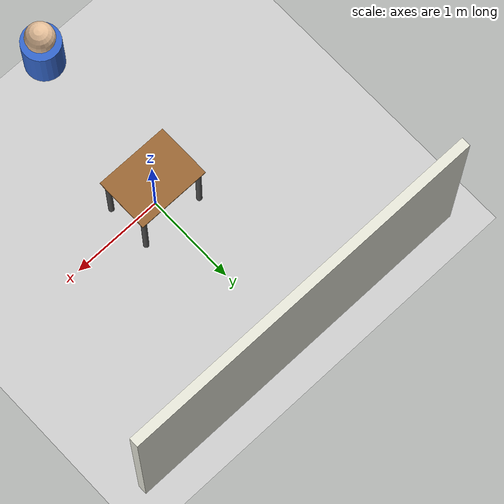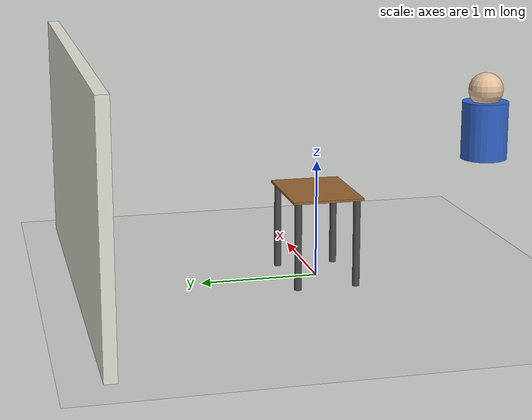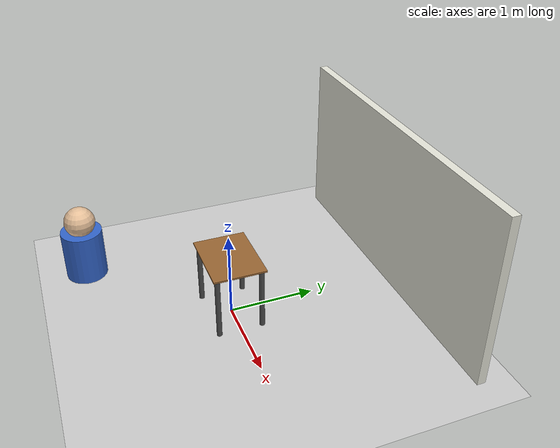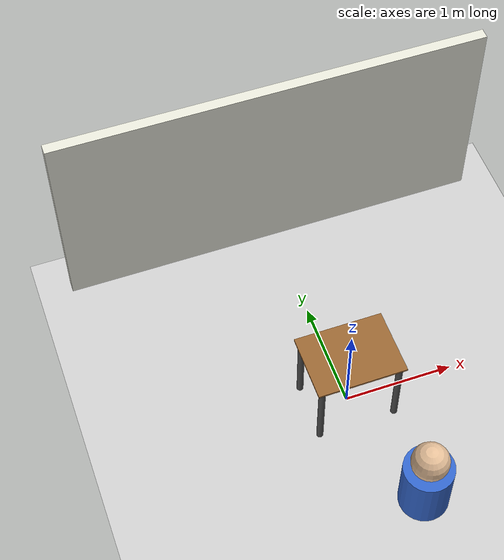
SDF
<?xml version="1.0"?>
<sdf version="1.6">
  <world name="companion_room">

    <!-- Physics -->
    <physics type="ode">
      <max_step_size>0.001</max_step_size>
      <real_time_factor>1.0</real_time_factor>
      <real_time_update_rate>1000</real_time_update_rate>
    </physics>

    <!-- Scene -->
    <scene>
      <ambient>0.6 0.6 0.6 1.0</ambient>
      <background>0.7 0.8 0.9 1.0</background>
      <shadows>true</shadows>
    </scene>

    <!-- Sun light -->
    <light type="directional" name="sun">
      <cast_shadows>true</cast_shadows>
      <pose>0 0 10 0 0 0</pose>
      <diffuse>0.8 0.8 0.8 1</diffuse>
      <specular>0.2 0.2 0.2 1</specular>
      <direction>-0.5 0.1 -0.9</direction>
    </light>

    <!-- Room light -->
    <light type="point" name="room_light">
      <pose>0 0 2.5 0 0 0</pose>
      <diffuse>0.8 0.8 0.8 1</diffuse>
      <specular>0.1 0.1 0.1 1</specular>
      <attenuation>
        <range>10</range>
        <constant>0.5</constant>
        <linear>0.01</linear>
        <quadratic>0.001</quadratic>
      </attenuation>
    </light>

    <!-- Ground plane -->
    <model name="ground_plane">
      <static>true</static>
      <link name="link">
        <collision name="collision">
          <geometry>
            <plane>
              <normal>0 0 1</normal>
              <size>10 10</size>
            </plane>
          </geometry>
        </collision>
        <visual name="visual">
          <geometry>
            <plane>
              <normal>0 0 1</normal>
              <size>10 10</size>
            </plane>
          </geometry>
          <material>
            <ambient>0.8 0.8 0.8 1</ambient>
            <diffuse>0.8 0.8 0.8 1</diffuse>
          </material>
        </visual>
      </link>
    </model>

    <!-- Table for robot -->
    <model name="table">
      <static>true</static>
      <pose>0 0 0 0 0 0</pose>
      <link name="table_top">
        <collision name="collision">
          <geometry>
            <box>
              <size>0.8 0.6 0.02</size>
            </box>
          </geometry>
          <pose>0 0 0.75 0 0 0</pose>
        </collision>
        <visual name="visual">
          <geometry>
            <box>
              <size>0.8 0.6 0.02</size>
            </box>
          </geometry>
          <pose>0 0 0.75 0 0 0</pose>
          <material>
            <ambient>0.6 0.4 0.2 1</ambient>
            <diffuse>0.6 0.4 0.2 1</diffuse>
          </material>
        </visual>
      </link>
      <link name="leg1">
        <collision name="collision">
          <geometry><cylinder><radius>0.03</radius><length>0.74</length></cylinder></geometry>
          <pose>0.35 0.25 0.37 0 0 0</pose>
        </collision>
        <visual name="visual">
          <geometry><cylinder><radius>0.03</radius><length>0.74</length></cylinder></geometry>
          <pose>0.35 0.25 0.37 0 0 0</pose>
          <material><ambient>0.3 0.3 0.3 1</ambient></material>
        </visual>
      </link>
      <link name="leg2">
        <collision name="collision">
          <geometry><cylinder><radius>0.03</radius><length>0.74</length></cylinder></geometry>
          <pose>-0.35 0.25 0.37 0 0 0</pose>
        </collision>
        <visual name="visual">
          <geometry><cylinder><radius>0.03</radius><length>0.74</length></cylinder></geometry>
          <pose>-0.35 0.25 0.37 0 0 0</pose>
          <material><ambient>0.3 0.3 0.3 1</ambient></material>
        </visual>
      </link>
      <link name="leg3">
        <collision name="collision">
          <geometry><cylinder><radius>0.03</radius><length>0.74</length></cylinder></geometry>
          <pose>0.35 -0.25 0.37 0 0 0</pose>
        </collision>
        <visual name="visual">
          <geometry><cylinder><radius>0.03</radius><length>0.74</length></cylinder></geometry>
          <pose>0.35 -0.25 0.37 0 0 0</pose>
          <material><ambient>0.3 0.3 0.3 1</ambient></material>
        </visual>
      </link>
      <link name="leg4">
        <collision name="collision">
          <geometry><cylinder><radius>0.03</radius><length>0.74</length></cylinder></geometry>
          <pose>-0.35 -0.25 0.37 0 0 0</pose>
        </collision>
        <visual name="visual">
          <geometry><cylinder><radius>0.03</radius><length>0.74</length></cylinder></geometry>
          <pose>-0.35 -0.25 0.37 0 0 0</pose>
          <material><ambient>0.3 0.3 0.3 1</ambient></material>
        </visual>
      </link>
    </model>

    <!-- Back wall -->
    <model name="back_wall">
      <static>true</static>
      <pose>0 2 1 0 0 0</pose>
      <link name="link">
        <collision name="collision">
          <geometry>
            <box><size>4 0.1 2</size></box>
          </geometry>
        </collision>
        <visual name="visual">
          <geometry>
            <box><size>4 0.1 2</size></box>
          </geometry>
          <material>
            <ambient>0.9 0.9 0.85 1</ambient>
            <diffuse>0.9 0.9 0.85 1</diffuse>
          </material>
        </visual>
      </link>
    </model>

    <!-- Face target (simple colored box to represent a person) -->
    <model name="face_target">
      <static>true</static>
      <pose>0 -1.5 1.2 0 0 0</pose>
      <link name="body">
        <visual name="head">
          <geometry>
            <sphere><radius>0.15</radius></sphere>
          </geometry>
          <pose>0 0 0.35 0 0 0</pose>
          <material>
            <ambient>0.9 0.75 0.6 1</ambient>
            <diffuse>0.9 0.75 0.6 1</diffuse>
          </material>
        </visual>
        <visual name="body">
          <geometry>
            <cylinder><radius>0.2</radius><length>0.5</length></cylinder>
          </geometry>
          <pose>0 0 0 0 0 0</pose>
          <material>
            <ambient>0.2 0.4 0.8 1</ambient>
            <diffuse>0.2 0.4 0.8 1</diffuse>
          </material>
        </visual>
      </link>
    </model>

  </world>
</sdf>
